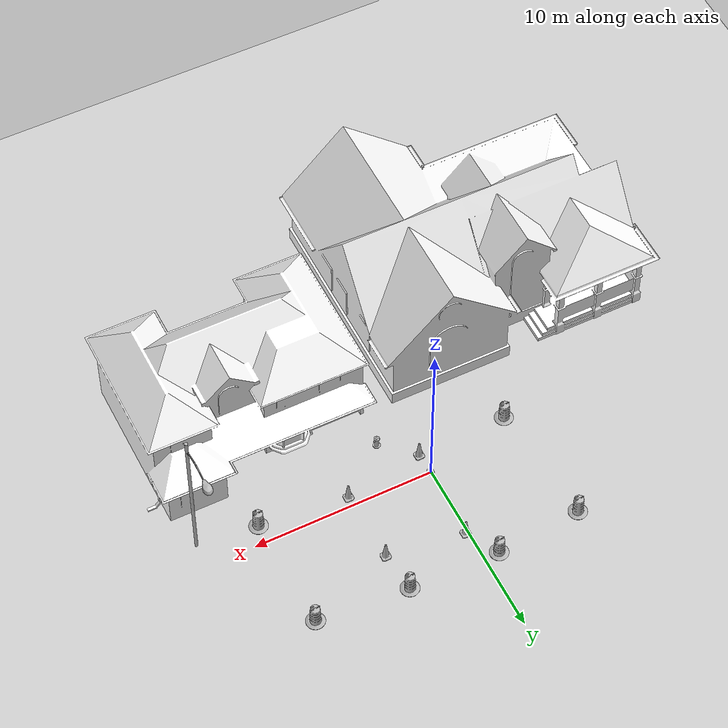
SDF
<sdf version="1.7">
 <world name="default">
  <light name="sun" type="directional">
   <pose>0 0 10 0 -0 0</pose>
   <diffuse>0.8 0.8 0.8 1</diffuse>
   <specular>0.2 0.2 0.2 1</specular>
   <attenuation>
    <range>1000</range>
    <constant>0.9</constant>
    <linear>0.01</linear>
    <quadratic>0.001</quadratic>
   </attenuation>
   <direction>-0.5 0.1 -0.9</direction>
   <spot><inner_angle>0</inner_angle><outer_angle>0</outer_angle><falloff>0</falloff></spot>
  </light>
  <model name="ground_plane">
   <static>1</static>
   <link name="link">
    <collision name="collision">
     <geometry><plane><normal>0 0 1</normal><size>100 100</size></plane></geometry>
     <surface>
      <contact><collide_bitmask>65535</collide_bitmask></contact>
      <friction><ode><mu>100</mu><mu2>50</mu2></ode></friction>
     </surface>
    </collision>
    <visual name="visual">
     <cast_shadows>0</cast_shadows>
     <geometry><plane><normal>0 0 1</normal><size>100 100</size></plane></geometry>
     <material>
      <script><uri>file://media/materials/scripts/gazebo.material</uri><name>Gazebo/Grey</name></script>
     </material>
    </visual>
   </link>
  </model>
  <gravity>0 0 -9.8</gravity>
  <magnetic_field>6e-06 2.3e-05 -4.2e-05</magnetic_field>
  <atmosphere type="adiabatic"/>
  <physics type="ode">
   <max_step_size>0.001</max_step_size>
   <real_time_factor>1</real_time_factor>
   <real_time_update_rate>1000</real_time_update_rate>
  </physics>
  <scene><ambient>0.4 0.4 0.4 1</ambient><background>0.7 0.7 0.7 1</background><shadows>1</shadows></scene>
  <audio><device>default</device></audio>
  <spherical_coordinates>
   <surface_model>EARTH_WGS84</surface_model>
   <latitude_deg>0</latitude_deg>
   <longitude_deg>0</longitude_deg>
   <elevation>0</elevation>
   <heading_deg>0</heading_deg>
  </spherical_coordinates>
  <model name="my_bot">
   <link name="base_link">
    <inertial>
     <pose>0.055714 0 0.078571 0 -0 0</pose>
     <mass>0.7</mass>
     <inertia>
      <ixx>0.0064169</ixx>
      <ixy>0</ixy>
      <ixz>0.00118929</ixz>
      <iyy>0.00745405</iyy>
      <iyz>0</iyz>
      <izz>0.00876214</izz>
     </inertia>
    </inertial>
    <collision name="base_link_fixed_joint_lump__chassis_collision">
     <pose>0.05 0 0.075 0 -0 0</pose>
     <geometry><box><size>0.3 0.3 0.15</size></box></geometry>
    </collision>
    <collision name="base_link_fixed_joint_lump__caster_wheel_collision_1">
     <pose>0.14 0 0 0 -0 0</pose>
     <geometry><sphere><radius>0.05</radius></sphere></geometry>
     <surface><friction><ode><mu>0.001</mu><mu2>0.001</mu2></ode></friction></surface>
    </collision>
    <collision name="base_link_fixed_joint_lump__laser_frame_collision_2">
     <pose>0 0 0.175 0 -0 0</pose>
     <geometry><cylinder><length>0.04</length><radius>0.05</radius></cylinder></geometry>
    </collision>
    <visual name="base_link_fixed_joint_lump__chassis_visual">
     <pose>0.05 0 0.075 0 -0 0</pose>
     <geometry><box><size>0.3 0.3 0.15</size></box></geometry>
     <material>
      <script><name>Gazebo/White</name><uri>file://media/materials/scripts/gazebo.material</uri></script>
     </material>
    </visual>
    <visual name="base_link_fixed_joint_lump__camera_link_visual_1">
     <pose>0.205 0 0.08 0 -0 0</pose>
     <geometry><box><size>0.01 0.03 0.03</size></box></geometry>
     <material>
      <script><name>Gazebo/Red</name><uri>file://media/materials/scripts/gazebo.material</uri></script>
     </material>
    </visual>
    <visual name="base_link_fixed_joint_lump__caster_wheel_visual_2">
     <pose>0.14 0 0 0 -0 0</pose>
     <geometry><sphere><radius>0.05</radius></sphere></geometry>
     <material>
      <script><name>Gazebo/Black</name><uri>file://media/materials/scripts/gazebo.material</uri></script>
     </material>
    </visual>
    <visual name="base_link_fixed_joint_lump__laser_frame_visual_3">
     <pose>0 0 0.175 0 -0 0</pose>
     <geometry><cylinder><length>0.04</length><radius>0.05</radius></cylinder></geometry>
     <material>
      <script><name>Gazebo/Red</name><uri>file://media/materials/scripts/gazebo.material</uri></script>
     </material>
    </visual>
    <sensor name="camera" type="camera">
     <visualize>1</visualize>
     <update_rate>10</update_rate>
     <camera>
      <horizontal_fov>1.089</horizontal_fov>
      <image><format>R8G8B8</format><width>640</width><height>480</height></image>
      <clip><near>0.05</near><far>8</far></clip>
     </camera>
     <plugin name="camera_controller" filename="libgazebo_ros_camera.so">
      <frame_name>camera_link_optical</frame_name>
     </plugin>
     <pose>0.205 0 0.08 0 -0 0</pose>
    </sensor>
    <sensor name="laser" type="ray">
     <visualize>0</visualize>
     <update_rate>10</update_rate>
     <ray>
      <scan>
       <horizontal>
        <samples>360</samples>
        <min_angle>-3.14</min_angle>
        <max_angle>3.14</max_angle>
        <resolution>1</resolution>
       </horizontal>
       <vertical><samples>1</samples><min_angle>0</min_angle><max_angle>0</max_angle></vertical>
      </scan>
      <range><min>0.3</min><max>12</max></range>
     </ray>
     <plugin name="laser_controller" filename="libgazebo_ros_ray_sensor.so">
      <ros><argument>~/out:=scan</argument></ros>
      <output_type>sensor_msgs/LaserScan</output_type>
      <frame_name>laser_frame</frame_name>
     </plugin>
     <pose>0 0 0.175 0 -0 0</pose>
    </sensor>
   </link>
   <joint name="left_wheel_joint" type="revolute">
    <pose relative_to="base_link">0 0.175 0 -1.5708 0 0</pose>
    <parent>base_link</parent>
    <child>left_wheel</child>
    <axis>
     <xyz>0 0 1</xyz>
     <limit><lower>-1e+16</lower><upper>1e+16</upper></limit>
     <dynamics><spring_reference>0</spring_reference><spring_stiffness>0</spring_stiffness></dynamics>
    </axis>
   </joint>
   <link name="left_wheel">
    <pose relative_to="left_wheel_joint">0 0 0 0 -0 0</pose>
    <inertial>
     <mass>0.1</mass>
     <inertia>
      <ixx>7.58333e-05</ixx>
      <ixy>0</ixy>
      <ixz>0</ixz>
      <iyy>7.58333e-05</iyy>
      <iyz>0</iyz>
      <izz>0.000125</izz>
     </inertia>
    </inertial>
    <collision name="left_wheel_collision">
     <geometry><cylinder><length>0.04</length><radius>0.05</radius></cylinder></geometry>
    </collision>
    <visual name="left_wheel_visual">
     <geometry><cylinder><length>0.04</length><radius>0.05</radius></cylinder></geometry>
     <material>
      <script><name>Gazebo/Blue</name><uri>file://media/materials/scripts/gazebo.material</uri></script>
     </material>
    </visual>
   </link>
   <joint name="right_wheel_joint" type="revolute">
    <pose relative_to="base_link">0 -0.175 0 1.5708 -0 0</pose>
    <parent>base_link</parent>
    <child>right_wheel</child>
    <axis>
     <xyz>0 0 -1</xyz>
     <limit><lower>-1e+16</lower><upper>1e+16</upper></limit>
     <dynamics><spring_reference>0</spring_reference><spring_stiffness>0</spring_stiffness></dynamics>
    </axis>
   </joint>
   <link name="right_wheel">
    <pose relative_to="right_wheel_joint">0 0 0 0 -0 0</pose>
    <inertial>
     <mass>0.1</mass>
     <inertia>
      <ixx>7.58333e-05</ixx>
      <ixy>0</ixy>
      <ixz>0</ixz>
      <iyy>7.58333e-05</iyy>
      <iyz>0</iyz>
      <izz>0.000125</izz>
     </inertia>
    </inertial>
    <collision name="right_wheel_collision">
     <geometry><cylinder><length>0.04</length><radius>0.05</radius></cylinder></geometry>
    </collision>
    <visual name="right_wheel_visual">
     <geometry><cylinder><length>0.04</length><radius>0.05</radius></cylinder></geometry>
     <material>
      <script><name>Gazebo/Blue</name><uri>file://media/materials/scripts/gazebo.material</uri></script>
     </material>
    </visual>
   </link>
   <static>0</static>
   <plugin name="diff_drive" filename="libgazebo_ros_diff_drive.so">
    <left_joint>left_wheel_joint</left_joint>
    <right_joint>right_wheel_joint</right_joint>
    <wheel_separation>0.35</wheel_separation>
    <wheel_diameter>0.1</wheel_diameter>
    <max_wheel_torque>200</max_wheel_torque>
    <max_wheel_acceleration>10.0</max_wheel_acceleration>
    <odometry_frame>odom</odometry_frame>
    <robot_base_frame>base_link</robot_base_frame>
    <publish_odom>1</publish_odom>
    <publish_odom_tf>1</publish_odom_tf>
    <publish_wheel_tf>1</publish_wheel_tf>
   </plugin>
   <pose>0.0093 6e-05 0.05 0 1.2e-05 0.000239</pose>
  </model>
  <model name="House 2">
   <static>1</static>
   <link name="link">
    <collision name="collision">
     <geometry><mesh><uri>model://house_2/meshes/house_2.dae</uri><scale>1.5 1.5 1.5</scale></mesh></geometry>
    </collision>
    <visual name="visual">
     <geometry><mesh><uri>model://house_2/meshes/house_2.dae</uri><scale>1.5 1.5 1.5</scale></mesh></geometry>
     <material>
      <script>
       <uri>model://house_2/materials/scripts</uri>
       <uri>model://house_2/materials/textures</uri>
       <uri>model://house_1/materials/textures</uri>
       <name>House_2/Diffuse</name>
      </script>
      <shader type="normal_map_tangent_space">
       <normal_map>model://house_1/materials/textures/House_1_Normal.png</normal_map>
      </shader>
     </material>
    </visual>
   </link>
   <pose>6.43111 -8.49507 0 0 -0 0</pose>
  </model>
  <model name="House 1">
   <static>1</static>
   <link name="link">
    <collision name="collision">
     <geometry><mesh><uri>model://house_1/meshes/house_1.dae</uri><scale>1.5 1.5 1.5</scale></mesh></geometry>
    </collision>
    <visual name="visual">
     <geometry><mesh><uri>model://house_1/meshes/house_1.dae</uri><scale>1.5 1.5 1.5</scale></mesh></geometry>
     <material>
      <script>
       <uri>model://house_1/materials/scripts</uri>
       <uri>model://house_1/materials/textures</uri>
       <name>House_1/Diffuse</name>
      </script>
      <shader type="normal_map_tangent_space"><normal_map>House_1_Normal.png</normal_map></shader>
     </material>
    </visual>
   </link>
   <pose>-7.4778 -10.4879 0 0 -0 0</pose>
  </model>
  <model name="Construction Barrel">
   <link name="link">
    <inertial>
     <pose>0 0 0.4 0 -0 0</pose>
     <mass>500</mass>
     <inertia><ixx>51.2096</ixx><iyy>51.2096</iyy><izz>25</izz><ixy>0</ixy><ixz>0</ixz><iyz>0</iyz></inertia>
    </inertial>
    <collision name="collision">
     <geometry><mesh><uri>model://construction_barrel/meshes/construction_barrel.dae</uri></mesh></geometry>
    </collision>
    <visual name="visual">
     <geometry><mesh><uri>model://construction_barrel/meshes/construction_barrel.dae</uri></mesh></geometry>
    </visual>
   </link>
   <pose>9.33375 -1.05043 -2e-06 1e-06 8e-06 -2.3e-05</pose>
  </model>
  <model name="Construction Barrel_0">
   <link name="link">
    <inertial>
     <pose>0 0 0.4 0 -0 0</pose>
     <mass>500</mass>
     <inertia><ixx>51.2096</ixx><iyy>51.2096</iyy><izz>25</izz><ixy>0</ixy><ixz>0</ixz><iyz>0</iyz></inertia>
    </inertial>
    <collision name="collision">
     <geometry><mesh><uri>model://construction_barrel/meshes/construction_barrel.dae</uri></mesh></geometry>
    </collision>
    <visual name="visual">
     <geometry><mesh><uri>model://construction_barrel/meshes/construction_barrel.dae</uri></mesh></geometry>
    </visual>
   </link>
   <pose>9.16545 5.22367 0 0 0 -2.6e-05</pose>
  </model>
  <model name="Construction Barrel_1">
   <link name="link">
    <inertial>
     <pose>0 0 0.4 0 -0 0</pose>
     <mass>500</mass>
     <inertia><ixx>51.2096</ixx><iyy>51.2096</iyy><izz>25</izz><ixy>0</ixy><ixz>0</ixz><iyz>0</iyz></inertia>
    </inertial>
    <collision name="collision">
     <geometry><mesh><uri>model://construction_barrel/meshes/construction_barrel.dae</uri></mesh></geometry>
    </collision>
    <visual name="visual">
     <geometry><mesh><uri>model://construction_barrel/meshes/construction_barrel.dae</uri></mesh></geometry>
    </visual>
   </link>
   <pose>4.14229 5.65181 -1e-06 2e-06 -1e-06 -1.7e-05</pose>
  </model>
  <model name="Construction Barrel_2">
   <link name="link">
    <inertial>
     <pose>0 0 0.4 0 -0 0</pose>
     <mass>500</mass>
     <inertia><ixx>51.2096</ixx><iyy>51.2096</iyy><izz>25</izz><ixy>0</ixy><ixz>0</ixz><iyz>0</iyz></inertia>
    </inertial>
    <collision name="collision">
     <geometry><mesh><uri>model://construction_barrel/meshes/construction_barrel.dae</uri></mesh></geometry>
    </collision>
    <visual name="visual">
     <geometry><mesh><uri>model://construction_barrel/meshes/construction_barrel.dae</uri></mesh></geometry>
    </visual>
   </link>
   <pose>-0.826389 5.79547 -0 0 -0 -1.8e-05</pose>
  </model>
  <model name="Construction Barrel_3">
   <link name="link">
    <inertial>
     <pose>0 0 0.4 0 -0 0</pose>
     <mass>500</mass>
     <inertia><ixx>51.2096</ixx><iyy>51.2096</iyy><izz>25</izz><ixy>0</ixy><ixz>0</ixz><iyz>0</iyz></inertia>
    </inertial>
    <collision name="collision">
     <geometry><mesh><uri>model://construction_barrel/meshes/construction_barrel.dae</uri></mesh></geometry>
    </collision>
    <visual name="visual">
     <geometry><mesh><uri>model://construction_barrel/meshes/construction_barrel.dae</uri></mesh></geometry>
    </visual>
   </link>
   <pose>-5.55653 5.45421 1e-06 3e-06 2e-06 -1.8e-05</pose>
  </model>
  <model name="Construction Barrel_4">
   <link name="link">
    <inertial>
     <pose>0 0 0.4 0 -0 0</pose>
     <mass>500</mass>
     <inertia><ixx>51.2096</ixx><iyy>51.2096</iyy><izz>25</izz><ixy>0</ixy><ixz>0</ixz><iyz>0</iyz></inertia>
    </inertial>
    <collision name="collision">
     <geometry><mesh><uri>model://construction_barrel/meshes/construction_barrel.dae</uri></mesh></geometry>
    </collision>
    <visual name="visual">
     <geometry><mesh><uri>model://construction_barrel/meshes/construction_barrel.dae</uri></mesh></geometry>
    </visual>
   </link>
   <pose>-4.93899 -1.33901 -1e-06 4e-06 -1e-06 -2.2e-05</pose>
  </model>
  <model name="fire_hydrant">
   <static>1</static>
   <link name="link">
    <collision name="collision">
     <geometry><mesh><uri>model://fire_hydrant/meshes/fire_hydrant.dae</uri></mesh></geometry>
    </collision>
    <visual name="visual">
     <geometry><mesh><uri>model://fire_hydrant/meshes/fire_hydrant.dae</uri></mesh></geometry>
    </visual>
   </link>
   <pose>1.80915 -2.6841 0 0 -0 0</pose>
  </model>
  <model name="Lamp Post">
   <static>1</static>
   <link name="link">
    <collision name="collision">
     <geometry><mesh><uri>model://lamp_post/meshes/lamp_post.dae</uri><scale>3 3 3</scale></mesh></geometry>
    </collision>
    <visual name="visual">
     <geometry><mesh><uri>model://lamp_post/meshes/lamp_post.dae</uri><scale>3 3 3</scale></mesh></geometry>
    </visual>
   </link>
   <pose>12.6179 -1.40575 0 0 -0 3.09803</pose>
  </model>
  <model name="Construction Cone">
   <link name="link">
    <collision name="collision">
     <geometry>
      <mesh><scale>10 10 10</scale><uri>model://construction_cone/meshes/construction_cone.dae</uri></mesh>
     </geometry>
    </collision>
    <visual name="visual">
     <geometry>
      <mesh><scale>10 10 10</scale><uri>model://construction_cone/meshes/construction_cone.dae</uri></mesh>
     </geometry>
    </visual>
    <inertial>
     <inertia><ixx>1</ixx><ixy>0</ixy><ixz>0</ixz><iyy>1</iyy><iyz>0</iyz><izz>1</izz></inertia>
     <mass>1</mass>
    </inertial>
   </link>
   <pose>4.50749 -0.52706 -0 0 -1e-06 0</pose>
  </model>
  <model name="Construction Cone_0">
   <link name="link">
    <collision name="collision">
     <geometry>
      <mesh><scale>10 10 10</scale><uri>model://construction_cone/meshes/construction_cone.dae</uri></mesh>
     </geometry>
    </collision>
    <visual name="visual">
     <geometry>
      <mesh><scale>10 10 10</scale><uri>model://construction_cone/meshes/construction_cone.dae</uri></mesh>
     </geometry>
    </visual>
    <inertial>
     <inertia><ixx>1</ixx><ixy>0</ixy><ixz>0</ixz><iyy>1</iyy><iyz>0</iyz><izz>1</izz></inertia>
     <mass>1</mass>
    </inertial>
   </link>
   <pose>4.39135 3.46079 -1e-06 3e-06 -1e-06 0</pose>
  </model>
  <model name="Construction Cone_1">
   <link name="link">
    <collision name="collision">
     <geometry>
      <mesh><scale>10 10 10</scale><uri>model://construction_cone/meshes/construction_cone.dae</uri></mesh>
     </geometry>
    </collision>
    <visual name="visual">
     <geometry>
      <mesh><scale>10 10 10</scale><uri>model://construction_cone/meshes/construction_cone.dae</uri></mesh>
     </geometry>
    </visual>
    <inertial>
     <inertia><ixx>1</ixx><ixy>0</ixy><ixz>0</ixz><iyy>1</iyy><iyz>0</iyz><izz>1</izz></inertia>
     <mass>1</mass>
    </inertial>
   </link>
   <pose>0.163835 4.05896 -0 0 -0 0</pose>
  </model>
  <model name="Construction Cone_2">
   <link name="link">
    <collision name="collision">
     <geometry>
      <mesh><scale>10 10 10</scale><uri>model://construction_cone/meshes/construction_cone.dae</uri></mesh>
     </geometry>
    </collision>
    <visual name="visual">
     <geometry>
      <mesh><scale>10 10 10</scale><uri>model://construction_cone/meshes/construction_cone.dae</uri></mesh>
     </geometry>
    </visual>
    <inertial>
     <inertia><ixx>1</ixx><ixy>0</ixy><ixz>0</ixz><iyy>1</iyy><iyz>0</iyz><izz>1</izz></inertia>
     <mass>1</mass>
    </inertial>
   </link>
   <pose>0.105093 -1.19503 -0 0 -1e-06 0</pose>
  </model>
 </world>
</sdf>
